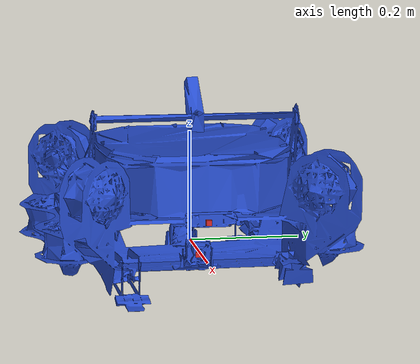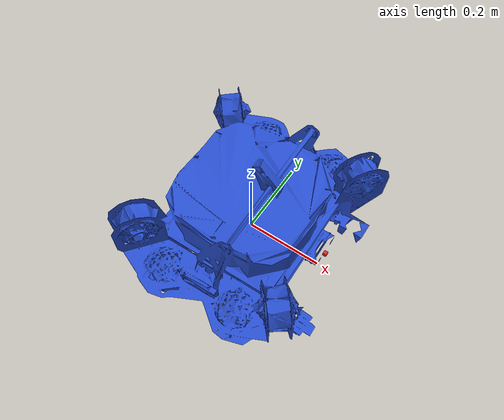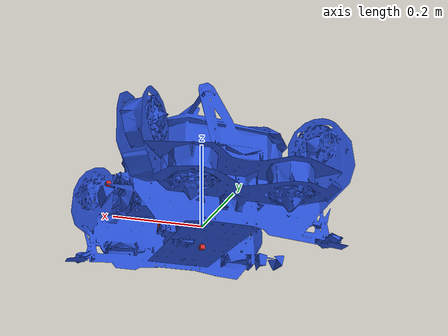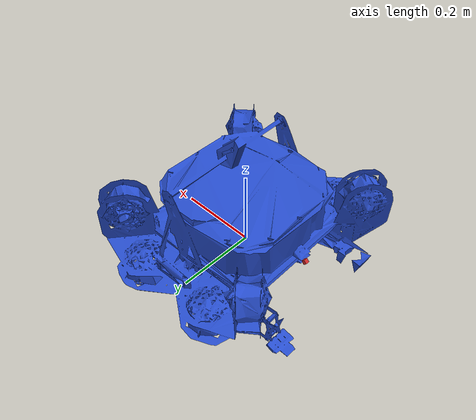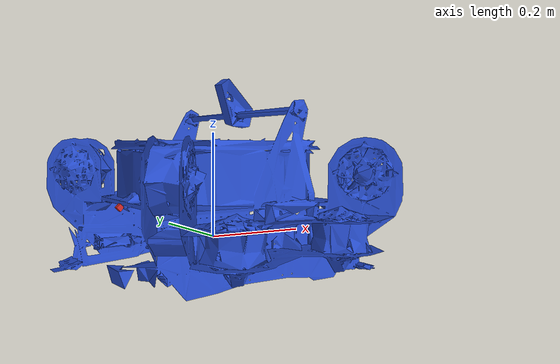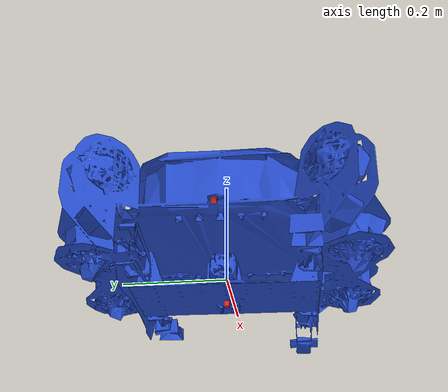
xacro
<?xml version="1.0"?>
<robot xmlns:xacro="http://www.ros.org/wiki/xacro" name="body">

    <link name="body">
        <visual>
            <origin xyz="0 0 0" rpy="0 0 1.6" />
            <geometry>
                <mesh filename="file://$(find rov_gazebo)/meshes/rov.stl"/>
            </geometry>
            <material name="blue"/>
        </visual>
        <collision>
            <origin xyz="0 0 0.05"/>
            <geometry>
                <box size="0.3 0.3 0.15"/>
            </geometry>
        </collision>
        <xacro:inertial_box mass="6" x="0.3" y="0.3" z="0.15">
            <origin xyz="0 0 0.05" rpy="0 0 0"/>
        </xacro:inertial_box>
    </link>

    <joint name="body_front_cam_link_joint" type="fixed">
        <parent link="body"/>
        <child link="front_cam_link"/>
        <origin xyz="0.215 0 0.075" rpy="0 0 0"/>
    </joint>

    <link name="front_cam_link">
        <visual>
            <origin xyz="0 0 0" rpy="0 0 0"/>
            <geometry>
                <box size="0.01 0.01 0.01"/>
            </geometry>
            <material name="red"/>
        </visual>
        <collision>
            <origin xyz="0 0 0" rpy="0 0 0"/>
            <geometry>
                <box size="0.01 0.01 0.01"/>
            </geometry>
        </collision>
        <xacro:inertial_box mass="0.0001" x="0.01" y="0.01" z="0.01">
            <origin xyz="0 0 0" rpy="0 0 0"/>
        </xacro:inertial_box>
    </link>

    <joint name="body_bottom_cam_link_joint" type="fixed">
        <parent link="body"/>
        <child link="bottom_cam_link"/>
        <origin xyz="0 0 -0.048" rpy="0 1.57 0"/>
    </joint>

    <link name="bottom_cam_link">
        <visual>
            <origin xyz="0 0 0" rpy="0 0 0"/>
            <geometry>
                <box size="0.01 0.01 0.01"/>
            </geometry>
            <material name="red"/>
        </visual>
        <collision>
            <origin xyz="0 0 0" rpy="0 0 0"/>
            <geometry>
                <box size="0.01 0.01 0.01"/>
            </geometry>
        </collision>
        <xacro:inertial_box mass="0.0001" x="0.01" y="0.01" z="0.01">
            <origin xyz="0 0 0" rpy="0 0 0"/>
        </xacro:inertial_box>
    </link>

    <joint name="body_manip_cam_link_joint" type="fixed">
        <parent link="body"/>
        <child link="manip_cam_link"/>
        <origin xyz="0.095 0 -0.007" rpy="0 0 0"/>
    </joint>

    <link name="manip_cam_link">
        <visual>
            <origin xyz="0 0 0" rpy="0 0 0"/>
            <geometry>
                <box size="0.01 0.01 0.01"/>
            </geometry>
            <material name="red"/>
        </visual>
        <collision>
            <origin xyz="0 0 0" rpy="0 0 0"/>
            <geometry>
                <box size="0.01 0.01 0.01"/>
            </geometry>
        </collision>
        <xacro:inertial_box mass="0.0001" x="0.01" y="0.01" z="0.01">
            <origin xyz="0 0 0" rpy="0 0 0"/>
        </xacro:inertial_box>
    </link>

    <joint name="body_depth_cam_link_joint" type="fixed">
        <parent link="body"/>
        <child link="depth_cam_link"/>
        <origin xyz="-0.19 0 0.067" rpy="0 0.785 3.14"/>
    </joint>

    <link name="depth_cam_link">
        <visual>
            <origin xyz="0 0 0" rpy="0 0 0"/>
            <geometry>
                <box size="0.01 0.01 0.01"/>
            </geometry>
            <material name="red"/>
        </visual>
        <collision>
            <origin xyz="0 0 0" rpy="0 0 0"/>
            <geometry>
                <box size="0.01 0.01 0.01"/>
            </geometry>
        </collision>
        <xacro:inertial_box mass="0.0001" x="0.01" y="0.01" z="0.01">
            <origin xyz="0 0 0" rpy="0 0 0"/>
        </xacro:inertial_box>
    </link>

    <gazebo>
        <plugin
            filename="ignition-gazebo-hydrodynamics-system"
            name="ignition::gazebo::systems::Hydrodynamics">
            <link_name>body</link_name>
            <water_density>1000</water_density>
            <!-- Added mass -->
            <xDotU>0</xDotU>
            <yDotV>0</yDotV>
            <zDotW>0</zDotW>
            <kDotP>0</kDotP>
            <mDotQ>0</mDotQ>
            <nDotR>0</nDotR>
            <!-- First order stability derivative -->
            <xU>0</xU>
            <yV>0</yV>
            <zW>0</zW>
            <kP>0</kP>
            <mQ>0</mQ>
            <nR>0</nR>
            <!-- Second order stability derivative -->
            <xUU>-33.800000000000004</xUU>
            <yVV>-54.26875</yVV>
            <zWW>-73.37135</zWW>
            <kPP>-4.0</kPP>
            <mQQ>-4.0</mQQ>
            <nRR>-4.0</nRR>
        </plugin>
    </gazebo>

</robot>
